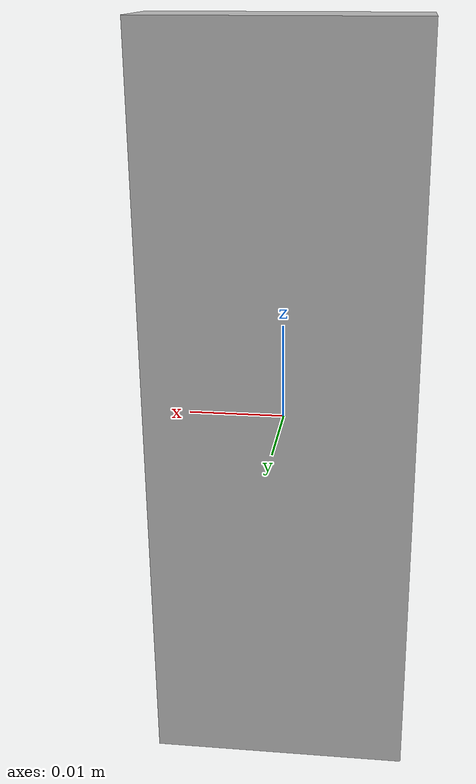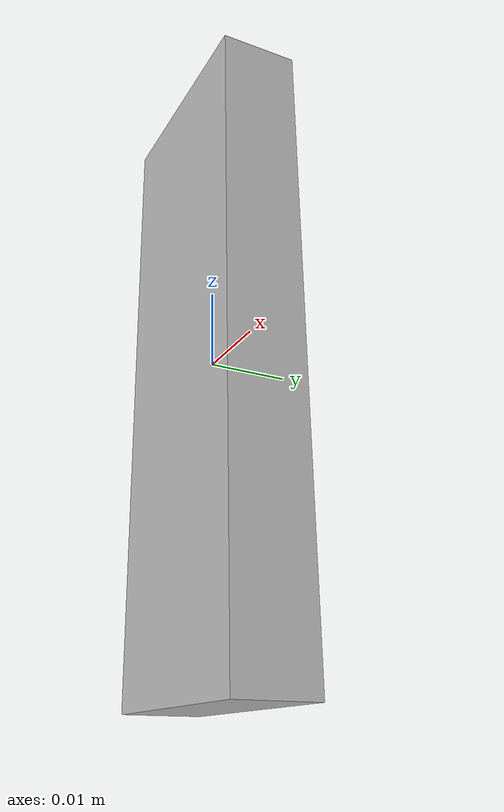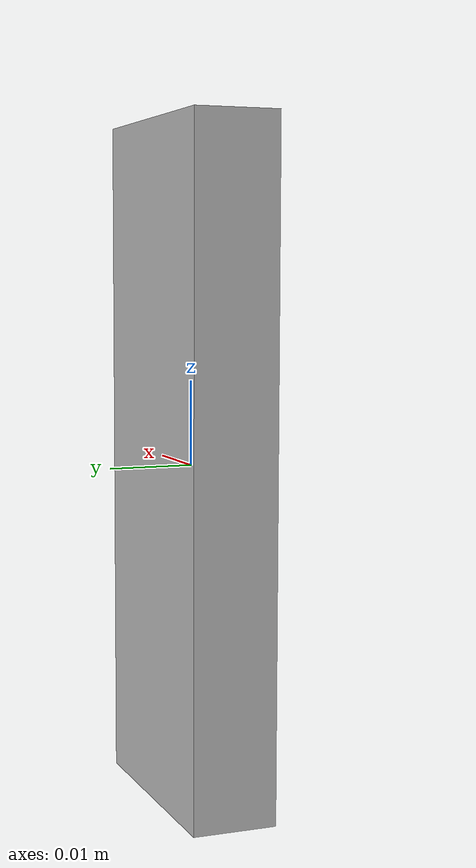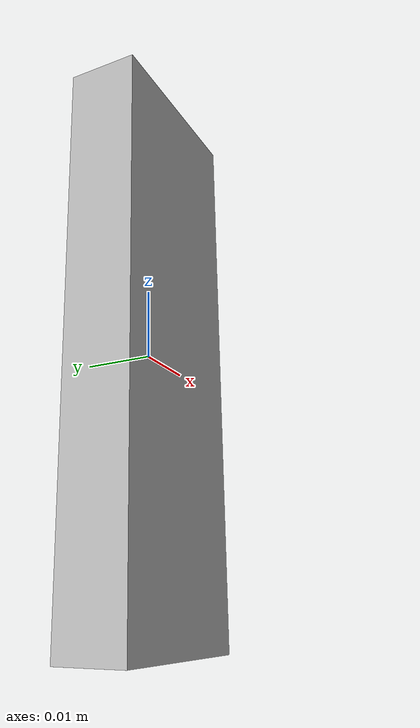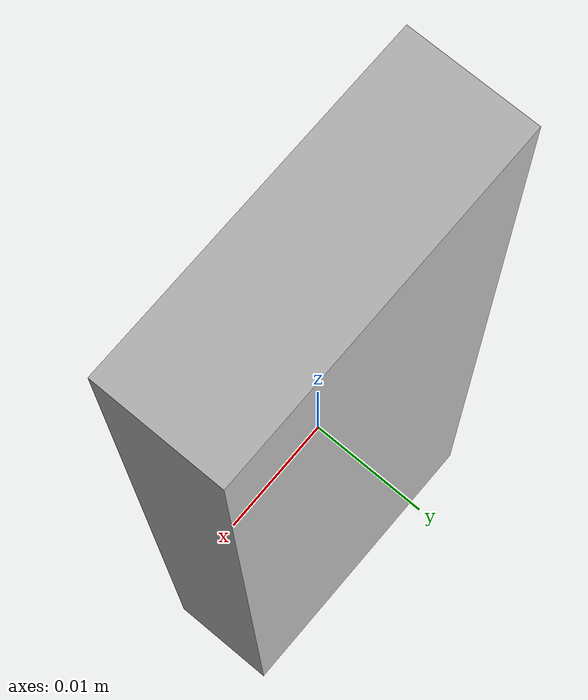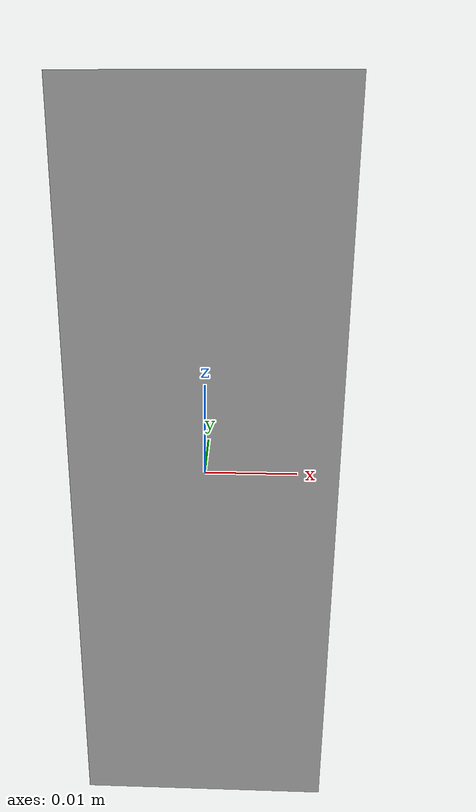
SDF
<?xml version="1.0" ?>
<sdf version="1.6">
  <model name="peg">
    <static>false</static>

    <link name="peg_link">
      <!-- Shift link up so model origin is near the base -->
      <pose>0 0 0 0 0 0</pose>

      <inertial>
        <mass>0.2</mass>
        <!-- Simple stable inertia values (approx) -->
        <inertia>
          <ixx>0.0002</ixx>
          <iyy>0.0002</iyy>
          <izz>0.00005</izz>
          <ixy>0</ixy>
          <ixz>0</ixz>
          <iyz>0</iyz>
        </inertia>
      </inertial>

      <collision name="collision">
        <geometry>
          <box>
            <size>0.028 0.010 0.080</size>
          </box>
        </geometry>

        <!-- Optional; remove if you want simplest physics first -->
        <surface>
          <friction>
            <ode>
              <mu>0.8</mu>
              <mu2>0.8</mu2>
            </ode>
          </friction>
        </surface>
      </collision>

      <visual name="visual">
        <geometry>
          <box>
            <size>0.028 0.010 0.080</size>
          </box>
        </geometry>
      </visual>
    </link>

  </model>
</sdf>
